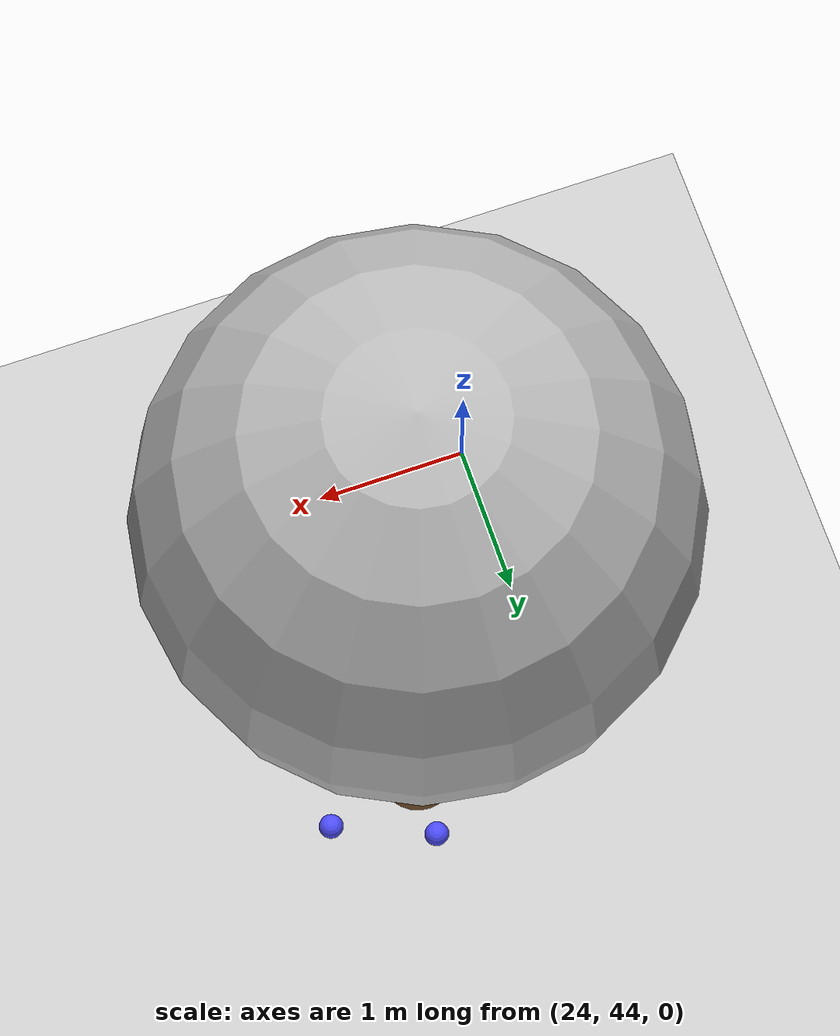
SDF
<sdf version="1.7">
 <world name="default">
  <model name="ground_plane">
   <static>1</static>
   <link name="link">
    <collision name="collision">
     <geometry><plane><normal>0 0 1</normal><size>100 100</size></plane></geometry>
     <surface>
      <contact><collide_bitmask>65535</collide_bitmask></contact>
      <friction><ode><mu>100</mu><mu2>50</mu2></ode></friction>
     </surface>
    </collision>
    <visual name="visual">
     <cast_shadows>0</cast_shadows>
     <geometry><plane><normal>0 0 1</normal><size>100 100</size></plane></geometry>
     <material>
      <script><uri>file://media/materials/scripts/gazebo.material</uri><name>Gazebo/Grey</name></script>
     </material>
    </visual>
   </link>
  </model>
  <model name="tree_simple_7">
   <static>1</static>
   <link name="link">
    <pose>0 0 0.1 0 -0 0</pose>
    <inertial>
     <mass>666</mass>
     <inertia>
      <ixx>0.0861167</ixx>
      <ixy>0</ixy>
      <ixz>0</ixz>
      <iyy>0.0861167</iyy>
      <iyz>0</iyz>
      <izz>0.0861167</izz>
     </inertia>
    </inertial>
    <collision name="collision_trunk">
     <pose>0 0 2 0 -0 0</pose>
     <geometry><cylinder><radius>0.25</radius><length>4</length></cylinder></geometry>
     <surface>
      <contact>
       <poissons_ratio>0.347</poissons_ratio>
       <elastic_modulus>8.8e+09</elastic_modulus>
       <ode><kp>100000</kp><kd>100</kd><max_vel>100</max_vel><min_depth>0.001</min_depth></ode>
      </contact>
      <friction>
       <torsional>
        <coefficient>1</coefficient>
        <use_patch_radius>0</use_patch_radius>
        <surface_radius>0.01</surface_radius>
       </torsional>
      </friction>
     </surface>
    </collision>
    <collision name="collision_treetop">
     <pose>0 0 5.2 0 -0 0</pose>
     <geometry><sphere><radius>1.5</radius></sphere></geometry>
     <surface>
      <contact>
       <poissons_ratio>0.347</poissons_ratio>
       <elastic_modulus>8.8e+09</elastic_modulus>
       <ode><kp>100000</kp><kd>100</kd><max_vel>100</max_vel><min_depth>0.001</min_depth></ode>
      </contact>
      <friction>
       <torsional>
        <coefficient>1</coefficient>
        <use_patch_radius>0</use_patch_radius>
        <surface_radius>0.01</surface_radius>
       </torsional>
      </friction>
     </surface>
    </collision>
    <visual name="trunk">
     <pose>0 0 2 0 -0 0</pose>
     <geometry><cylinder><radius>0.25</radius><length>4</length></cylinder></geometry>
     <material>
      <script>
       <uri>model://tree_simple/scripts</uri>
       <uri>model://tree_simple/materials/textures</uri>
       <name>TreeSimple/Trunk</name>
      </script>
     </material>
    </visual>
    <visual name="treetop">
     <pose>0 0 5.2 0 -0 0</pose>
     <geometry><sphere><radius>1.5</radius></sphere></geometry>
     <material>
      <script>
       <uri>model://tree_simple/scripts</uri>
       <uri>model://tree_simple/materials/textures</uri>
       <name>TreeSimple/Treetop</name>
      </script>
     </material>
    </visual>
   </link>
   <pose>25 46 -0.1 0 -0 0</pose>
  </model>
  <model name="seed_blue_14">
   <link name="link">
    <inertial>
     <mass>1</mass>
     <inertia><ixx>0.1</ixx><ixy>0</ixy><ixz>0</ixz><iyy>0.1</iyy><iyz>0</iyz><izz>0.1</izz></inertia>
    </inertial>
    <visual name="visual">
     <geometry><sphere><radius>0.08</radius></sphere></geometry>
     <material>
      <script><name>Gazebo/Grey</name><uri>file://media/materials/scripts/gazebo.material</uri></script>
      <shader type="pixel"><normal_map>__default__</normal_map></shader>
      <ambient>0.3 0.3 1 1</ambient>
      <diffuse>0.7 0.7 0.7 1</diffuse>
      <specular>0.01 0.01 0.01 1</specular>
      <emissive>0 0 0 1</emissive>
     </material>
    </visual>
    <collision name="collision">
     <geometry><sphere><radius>0.0005</radius></sphere></geometry>
     <surface>
      <friction>
       <ode><mu>1</mu><mu2>1</mu2><fdir1>0 0 0</fdir1><slip1>0</slip1><slip2>0</slip2></ode>
       <torsional>
        <coefficient>1</coefficient>
        <patch_radius>0</patch_radius>
        <surface_radius>0</surface_radius>
        <use_patch_radius>1</use_patch_radius>
        <ode><slip>0</slip></ode>
       </torsional>
      </friction>
      <bounce><restitution_coefficient>0</restitution_coefficient><threshold>1e+06</threshold></bounce>
      <contact>
       <collide_without_contact>0</collide_without_contact>
       <collide_without_contact_bitmask>1</collide_without_contact_bitmask>
       <collide_bitmask>1</collide_bitmask>
       <ode>
        <soft_cfm>0</soft_cfm>
        <soft_erp>0.2</soft_erp>
        <kp>1e+13</kp>
        <kd>1</kd>
        <max_vel>0.01</max_vel>
        <min_depth>0</min_depth>
       </ode>
       <bullet>
        <split_impulse>1</split_impulse>
        <split_impulse_penetration_threshold>-0.01</split_impulse_penetration_threshold>
        <soft_cfm>0</soft_cfm>
        <soft_erp>0.2</soft_erp>
        <kp>1e+13</kp>
        <kd>1</kd>
       </bullet>
      </contact>
     </surface>
    </collision>
   </link>
   <static>0</static>
   <pose>25.6477 46.1553 0.0005 0 -0 0</pose>
  </model>
  <model name="seed_blue_20">
   <link name="link">
    <inertial>
     <mass>1</mass>
     <inertia><ixx>0.1</ixx><ixy>0</ixy><ixz>0</ixz><iyy>0.1</iyy><iyz>0</iyz><izz>0.1</izz></inertia>
    </inertial>
    <visual name="visual">
     <geometry><sphere><radius>0.08</radius></sphere></geometry>
     <material>
      <script><name>Gazebo/Grey</name><uri>file://media/materials/scripts/gazebo.material</uri></script>
      <shader type="pixel"><normal_map>__default__</normal_map></shader>
      <ambient>0.3 0.3 1 1</ambient>
      <diffuse>0.7 0.7 0.7 1</diffuse>
      <specular>0.01 0.01 0.01 1</specular>
      <emissive>0 0 0 1</emissive>
     </material>
    </visual>
    <collision name="collision">
     <geometry><sphere><radius>0.0005</radius></sphere></geometry>
     <surface>
      <friction>
       <ode><mu>1</mu><mu2>1</mu2><fdir1>0 0 0</fdir1><slip1>0</slip1><slip2>0</slip2></ode>
       <torsional>
        <coefficient>1</coefficient>
        <patch_radius>0</patch_radius>
        <surface_radius>0</surface_radius>
        <use_patch_radius>1</use_patch_radius>
        <ode><slip>0</slip></ode>
       </torsional>
      </friction>
      <bounce><restitution_coefficient>0</restitution_coefficient><threshold>1e+06</threshold></bounce>
      <contact>
       <collide_without_contact>0</collide_without_contact>
       <collide_without_contact_bitmask>1</collide_without_contact_bitmask>
       <collide_bitmask>1</collide_bitmask>
       <ode>
        <soft_cfm>0</soft_cfm>
        <soft_erp>0.2</soft_erp>
        <kp>1e+13</kp>
        <kd>1</kd>
        <max_vel>0.01</max_vel>
        <min_depth>0</min_depth>
       </ode>
       <bullet>
        <split_impulse>1</split_impulse>
        <split_impulse_penetration_threshold>-0.01</split_impulse_penetration_threshold>
        <soft_cfm>0</soft_cfm>
        <soft_erp>0.2</soft_erp>
        <kp>1e+13</kp>
        <kd>1</kd>
       </bullet>
      </contact>
     </surface>
    </collision>
   </link>
   <static>0</static>
   <pose>25.0161 46.4245 0.0005 0 -0 0</pose>
  </model>
 </world>
</sdf>
